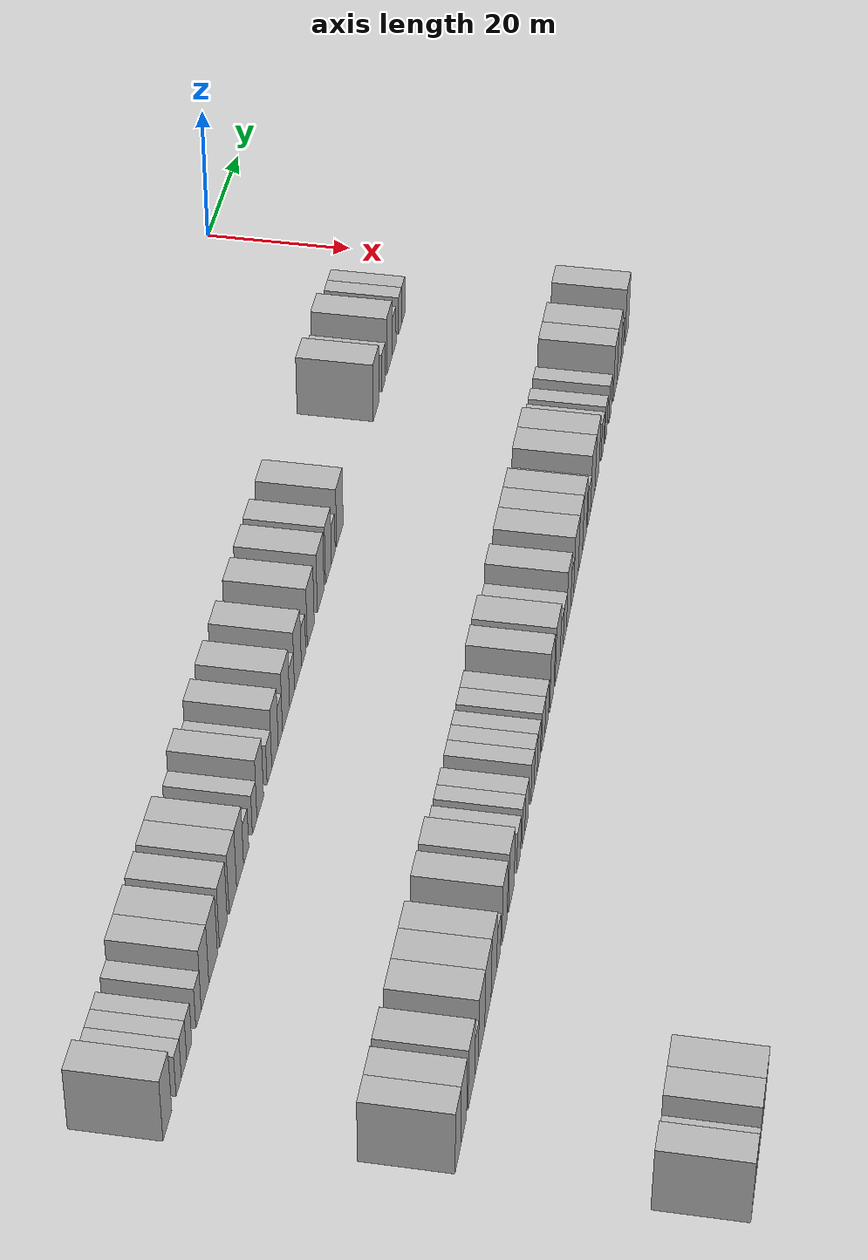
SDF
<sdf version="1.6">
 <world name="default">
  <model name="building_72">
   <static>1</static>
   <pose>25.0000 -158.2973 0 0.000000 0.000000 0.000000</pose>
   <link name="link">
    <pose>0 0 4.50 0 0 0</pose>
    <collision name="collision"><geometry><box><size>10.0000 4.0989 9.0000</size></box></geometry></collision>
    <visual name="visual">
     <cast_shadows>0</cast_shadows>
     <geometry><box><size>10.0000 4.0989 9.0000</size></box></geometry>
     <material>
      <script>
       <uri>model://HANNAS_wall/materials/scripts</uri>
       <uri>model://HANNAS_wall/materials/textures</uri>
       <name>vrc/HANNAS_wall</name>
      </script>
     </material>
    </visual>
   </link>
  </model>
  <model name="building_73">
   <static>1</static>
   <pose>25.0000 -152.9927 0 0.000000 0.000000 0.000000</pose>
   <link name="link">
    <pose>0 0 3.00 0 0 0</pose>
    <collision name="collision"><geometry><box><size>10.0000 2.5102 6.0000</size></box></geometry></collision>
    <visual name="visual">
     <cast_shadows>0</cast_shadows>
     <geometry><box><size>10.0000 2.5102 6.0000</size></box></geometry>
     <material>
      <script>
       <uri>model://HANNAS_wall/materials/scripts</uri>
       <uri>model://HANNAS_wall/materials/textures</uri>
       <name>vrc/HANNAS_wall</name>
      </script>
     </material>
    </visual>
   </link>
  </model>
  <model name="building_74">
   <static>1</static>
   <pose>25.0000 -150.4582 0 0.000000 0.000000 0.000000</pose>
   <link name="link">
    <pose>0 0 3.00 0 0 0</pose>
    <collision name="collision"><geometry><box><size>10.0000 2.5588 6.0000</size></box></geometry></collision>
    <visual name="visual">
     <cast_shadows>0</cast_shadows>
     <geometry><box><size>10.0000 2.5588 6.0000</size></box></geometry>
     <material>
      <script>
       <uri>model://HANNAS_wall/materials/scripts</uri>
       <uri>model://HANNAS_wall/materials/textures</uri>
       <name>vrc/HANNAS_wall</name>
      </script>
     </material>
    </visual>
   </link>
  </model>
  <model name="building_75">
   <static>1</static>
   <pose>25.0000 -147.9556 0 0.000000 0.000000 0.000000</pose>
   <link name="link">
    <pose>0 0 3.00 0 0 0</pose>
    <collision name="collision"><geometry><box><size>10.0000 2.4464 6.0000</size></box></geometry></collision>
    <visual name="visual">
     <cast_shadows>0</cast_shadows>
     <geometry><box><size>10.0000 2.4464 6.0000</size></box></geometry>
     <material>
      <script>
       <uri>model://HANNAS_wall/materials/scripts</uri>
       <uri>model://HANNAS_wall/materials/textures</uri>
       <name>vrc/HANNAS_wall</name>
      </script>
     </material>
    </visual>
   </link>
  </model>
  <model name="building_76">
   <static>1</static>
   <pose>25.0000 -143.4073 0 0.000000 0.000000 0.000000</pose>
   <link name="link">
    <pose>0 0 3.00 0 0 0</pose>
    <collision name="collision"><geometry><box><size>10.0000 2.6502 6.0000</size></box></geometry></collision>
    <visual name="visual">
     <cast_shadows>0</cast_shadows>
     <geometry><box><size>10.0000 2.6502 6.0000</size></box></geometry>
     <material>
      <script>
       <uri>model://HANNAS_wall/materials/scripts</uri>
       <uri>model://HANNAS_wall/materials/textures</uri>
       <name>vrc/HANNAS_wall</name>
      </script>
     </material>
    </visual>
   </link>
  </model>
  <model name="building_77">
   <static>1</static>
   <pose>25.0000 -140.1604 0 0.000000 0.000000 0.000000</pose>
   <link name="link">
    <pose>0 0 4.50 0 0 0</pose>
    <collision name="collision"><geometry><box><size>10.0000 3.8436 9.0000</size></box></geometry></collision>
    <visual name="visual">
     <cast_shadows>0</cast_shadows>
     <geometry><box><size>10.0000 3.8436 9.0000</size></box></geometry>
     <material>
      <script>
       <uri>model://HANNAS_wall/materials/scripts</uri>
       <uri>model://HANNAS_wall/materials/textures</uri>
       <name>vrc/HANNAS_wall</name>
      </script>
     </material>
    </visual>
   </link>
  </model>
  <model name="building_78">
   <static>1</static>
   <pose>25.0000 -136.0459 0 0.000000 0.000000 0.000000</pose>
   <link name="link">
    <pose>0 0 4.50 0 0 0</pose>
    <collision name="collision"><geometry><box><size>10.0000 4.3853 9.0000</size></box></geometry></collision>
    <visual name="visual">
     <cast_shadows>0</cast_shadows>
     <geometry><box><size>10.0000 4.3853 9.0000</size></box></geometry>
     <material>
      <script>
       <uri>model://HANNAS_wall/materials/scripts</uri>
       <uri>model://HANNAS_wall/materials/textures</uri>
       <name>vrc/HANNAS_wall</name>
      </script>
     </material>
    </visual>
   </link>
  </model>
  <model name="building_79">
   <static>1</static>
   <pose>25.0000 -130.8125 0 0.000000 0.000000 0.000000</pose>
   <link name="link">
    <pose>0 0 4.50 0 0 0</pose>
    <collision name="collision"><geometry><box><size>10.0000 4.0816 9.0000</size></box></geometry></collision>
    <visual name="visual">
     <cast_shadows>0</cast_shadows>
     <geometry><box><size>10.0000 4.0816 9.0000</size></box></geometry>
     <material>
      <script>
       <uri>model://HANNAS_wall/materials/scripts</uri>
       <uri>model://HANNAS_wall/materials/textures</uri>
       <name>vrc/HANNAS_wall</name>
      </script>
     </material>
    </visual>
   </link>
  </model>
  <model name="building_80">
   <static>1</static>
   <pose>25.0000 -125.8046 0 0.000000 0.000000 0.000000</pose>
   <link name="link">
    <pose>0 0 4.50 0 0 0</pose>
    <collision name="collision"><geometry><box><size>10.0000 3.9341 9.0000</size></box></geometry></collision>
    <visual name="visual">
     <cast_shadows>0</cast_shadows>
     <geometry><box><size>10.0000 3.9341 9.0000</size></box></geometry>
     <material>
      <script>
       <uri>model://HANNAS_wall/materials/scripts</uri>
       <uri>model://HANNAS_wall/materials/textures</uri>
       <name>vrc/HANNAS_wall</name>
      </script>
     </material>
    </visual>
   </link>
  </model>
  <model name="building_81">
   <static>1</static>
   <pose>25.0000 -121.9479 0 0.000000 0.000000 0.000000</pose>
   <link name="link">
    <pose>0 0 4.50 0 0 0</pose>
    <collision name="collision"><geometry><box><size>10.0000 3.7795 9.0000</size></box></geometry></collision>
    <visual name="visual">
     <cast_shadows>0</cast_shadows>
     <geometry><box><size>10.0000 3.7795 9.0000</size></box></geometry>
     <material>
      <script>
       <uri>model://HANNAS_wall/materials/scripts</uri>
       <uri>model://HANNAS_wall/materials/textures</uri>
       <name>vrc/HANNAS_wall</name>
      </script>
     </material>
    </visual>
   </link>
  </model>
  <model name="building_82">
   <static>1</static>
   <pose>25.0000 -118.6516 0 0.000000 0.000000 0.000000</pose>
   <link name="link">
    <pose>0 0 3.00 0 0 0</pose>
    <collision name="collision"><geometry><box><size>10.0000 2.8130 6.0000</size></box></geometry></collision>
    <visual name="visual">
     <cast_shadows>0</cast_shadows>
     <geometry><box><size>10.0000 2.8130 6.0000</size></box></geometry>
     <material>
      <script>
       <uri>model://HANNAS_wall/materials/scripts</uri>
       <uri>model://HANNAS_wall/materials/textures</uri>
       <name>vrc/HANNAS_wall</name>
      </script>
     </material>
    </visual>
   </link>
  </model>
  <model name="building_83">
   <static>1</static>
   <pose>25.0000 -113.9781 0 0.000000 0.000000 0.000000</pose>
   <link name="link">
    <pose>0 0 3.00 0 0 0</pose>
    <collision name="collision"><geometry><box><size>10.0000 2.5339 6.0000</size></box></geometry></collision>
    <visual name="visual">
     <cast_shadows>0</cast_shadows>
     <geometry><box><size>10.0000 2.5339 6.0000</size></box></geometry>
     <material>
      <script>
       <uri>model://HANNAS_wall/materials/scripts</uri>
       <uri>model://HANNAS_wall/materials/textures</uri>
       <name>vrc/HANNAS_wall</name>
      </script>
     </material>
    </visual>
   </link>
  </model>
  <model name="building_84">
   <static>1</static>
   <pose>25.0000 -110.8381 0 0.000000 0.000000 0.000000</pose>
   <link name="link">
    <pose>0 0 4.50 0 0 0</pose>
    <collision name="collision"><geometry><box><size>10.0000 3.7462 9.0000</size></box></geometry></collision>
    <visual name="visual">
     <cast_shadows>0</cast_shadows>
     <geometry><box><size>10.0000 3.7462 9.0000</size></box></geometry>
     <material>
      <script>
       <uri>model://HANNAS_wall/materials/scripts</uri>
       <uri>model://HANNAS_wall/materials/textures</uri>
       <name>vrc/HANNAS_wall</name>
      </script>
     </material>
    </visual>
   </link>
  </model>
  <model name="building_85">
   <static>1</static>
   <pose>25.0000 -105.6210 0 0.000000 0.000000 0.000000</pose>
   <link name="link">
    <pose>0 0 3.00 0 0 0</pose>
    <collision name="collision"><geometry><box><size>10.0000 2.6880 6.0000</size></box></geometry></collision>
    <visual name="visual">
     <cast_shadows>0</cast_shadows>
     <geometry><box><size>10.0000 2.6880 6.0000</size></box></geometry>
     <material>
      <script>
       <uri>model://HANNAS_wall/materials/scripts</uri>
       <uri>model://HANNAS_wall/materials/textures</uri>
       <name>vrc/HANNAS_wall</name>
      </script>
     </material>
    </visual>
   </link>
  </model>
  <model name="building_86">
   <static>1</static>
   <pose>25.0000 -102.3888 0 0.000000 0.000000 0.000000</pose>
   <link name="link">
    <pose>0 0 4.50 0 0 0</pose>
    <collision name="collision"><geometry><box><size>10.0000 3.7763 9.0000</size></box></geometry></collision>
    <visual name="visual">
     <cast_shadows>0</cast_shadows>
     <geometry><box><size>10.0000 3.7763 9.0000</size></box></geometry>
     <material>
      <script>
       <uri>model://HANNAS_wall/materials/scripts</uri>
       <uri>model://HANNAS_wall/materials/textures</uri>
       <name>vrc/HANNAS_wall</name>
      </script>
     </material>
    </visual>
   </link>
  </model>
  <model name="building_87">
   <static>1</static>
   <pose>25.0000 -99.2674 0 0.000000 0.000000 0.000000</pose>
   <link name="link">
    <pose>0 0 3.00 0 0 0</pose>
    <collision name="collision"><geometry><box><size>10.0000 2.4665 6.0000</size></box></geometry></collision>
    <visual name="visual">
     <cast_shadows>0</cast_shadows>
     <geometry><box><size>10.0000 2.4665 6.0000</size></box></geometry>
     <material>
      <script>
       <uri>model://HANNAS_wall/materials/scripts</uri>
       <uri>model://HANNAS_wall/materials/textures</uri>
       <name>vrc/HANNAS_wall</name>
      </script>
     </material>
    </visual>
   </link>
  </model>
  <model name="building_88">
   <static>1</static>
   <pose>25.0000 -95.8864 0 0.000000 0.000000 0.000000</pose>
   <link name="link">
    <pose>0 0 4.50 0 0 0</pose>
    <collision name="collision"><geometry><box><size>10.0000 4.2955 9.0000</size></box></geometry></collision>
    <visual name="visual">
     <cast_shadows>0</cast_shadows>
     <geometry><box><size>10.0000 4.2955 9.0000</size></box></geometry>
     <material>
      <script>
       <uri>model://HANNAS_wall/materials/scripts</uri>
       <uri>model://HANNAS_wall/materials/textures</uri>
       <name>vrc/HANNAS_wall</name>
      </script>
     </material>
    </visual>
   </link>
  </model>
  <model name="building_89">
   <static>1</static>
   <pose>25.0000 -92.2681 0 0.000000 0.000000 0.000000</pose>
   <link name="link">
    <pose>0 0 3.00 0 0 0</pose>
    <collision name="collision"><geometry><box><size>10.0000 2.9411 6.0000</size></box></geometry></collision>
    <visual name="visual">
     <cast_shadows>0</cast_shadows>
     <geometry><box><size>10.0000 2.9411 6.0000</size></box></geometry>
     <material>
      <script>
       <uri>model://HANNAS_wall/materials/scripts</uri>
       <uri>model://HANNAS_wall/materials/textures</uri>
       <name>vrc/HANNAS_wall</name>
      </script>
     </material>
    </visual>
   </link>
  </model>
  <model name="building_90">
   <static>1</static>
   <pose>25.0000 -88.6810 0 0.000000 0.000000 0.000000</pose>
   <link name="link">
    <pose>0 0 4.50 0 0 0</pose>
    <collision name="collision"><geometry><box><size>10.0000 4.2332 9.0000</size></box></geometry></collision>
    <visual name="visual">
     <cast_shadows>0</cast_shadows>
     <geometry><box><size>10.0000 4.2332 9.0000</size></box></geometry>
     <material>
      <script>
       <uri>model://HANNAS_wall/materials/scripts</uri>
       <uri>model://HANNAS_wall/materials/textures</uri>
       <name>vrc/HANNAS_wall</name>
      </script>
     </material>
    </visual>
   </link>
  </model>
  <model name="building_91">
   <static>1</static>
   <pose>25.0000 -85.2119 0 0.000000 0.000000 0.000000</pose>
   <link name="link">
    <pose>0 0 3.00 0 0 0</pose>
    <collision name="collision"><geometry><box><size>10.0000 2.7051 6.0000</size></box></geometry></collision>
    <visual name="visual">
     <cast_shadows>0</cast_shadows>
     <geometry><box><size>10.0000 2.7051 6.0000</size></box></geometry>
     <material>
      <script>
       <uri>model://HANNAS_wall/materials/scripts</uri>
       <uri>model://HANNAS_wall/materials/textures</uri>
       <name>vrc/HANNAS_wall</name>
      </script>
     </material>
    </visual>
   </link>
  </model>
  <model name="building_92">
   <static>1</static>
   <pose>25.0000 -80.6773 0 0.000000 0.000000 0.000000</pose>
   <link name="link">
    <pose>0 0 4.50 0 0 0</pose>
    <collision name="collision"><geometry><box><size>10.0000 4.3639 9.0000</size></box></geometry></collision>
    <visual name="visual">
     <cast_shadows>0</cast_shadows>
     <geometry><box><size>10.0000 4.3639 9.0000</size></box></geometry>
     <material>
      <script>
       <uri>model://HANNAS_wall/materials/scripts</uri>
       <uri>model://HANNAS_wall/materials/textures</uri>
       <name>vrc/HANNAS_wall</name>
      </script>
     </material>
    </visual>
   </link>
  </model>
  <model name="building_93">
   <static>1</static>
   <pose>25.0000 -74.3318 0 0.000000 0.000000 0.000000</pose>
   <link name="link">
    <pose>0 0 4.50 0 0 0</pose>
    <collision name="collision"><geometry><box><size>10.0000 4.3272 9.0000</size></box></geometry></collision>
    <visual name="visual">
     <cast_shadows>0</cast_shadows>
     <geometry><box><size>10.0000 4.3272 9.0000</size></box></geometry>
     <material>
      <script>
       <uri>model://HANNAS_wall/materials/scripts</uri>
       <uri>model://HANNAS_wall/materials/textures</uri>
       <name>vrc/HANNAS_wall</name>
      </script>
     </material>
    </visual>
   </link>
  </model>
  <model name="building_94">
   <static>1</static>
   <pose>25.0000 -69.2360 0 0.000000 0.000000 0.000000</pose>
   <link name="link">
    <pose>0 0 4.50 0 0 0</pose>
    <collision name="collision"><geometry><box><size>10.0000 3.8645 9.0000</size></box></geometry></collision>
    <visual name="visual">
     <cast_shadows>0</cast_shadows>
     <geometry><box><size>10.0000 3.8645 9.0000</size></box></geometry>
     <material>
      <script>
       <uri>model://HANNAS_wall/materials/scripts</uri>
       <uri>model://HANNAS_wall/materials/textures</uri>
       <name>vrc/HANNAS_wall</name>
      </script>
     </material>
    </visual>
   </link>
  </model>
  <model name="building_95">
   <static>1</static>
   <pose>25.0000 -66.0665 0 0.000000 0.000000 0.000000</pose>
   <link name="link">
    <pose>0 0 3.00 0 0 0</pose>
    <collision name="collision"><geometry><box><size>10.0000 2.4743 6.0000</size></box></geometry></collision>
    <visual name="visual">
     <cast_shadows>0</cast_shadows>
     <geometry><box><size>10.0000 2.4743 6.0000</size></box></geometry>
     <material>
      <script>
       <uri>model://HANNAS_wall/materials/scripts</uri>
       <uri>model://HANNAS_wall/materials/textures</uri>
       <name>vrc/HANNAS_wall</name>
      </script>
     </material>
    </visual>
   </link>
  </model>
  <model name="building_96">
   <static>1</static>
   <pose>25.0000 -61.6239 0 0.000000 0.000000 0.000000</pose>
   <link name="link">
    <pose>0 0 4.50 0 0 0</pose>
    <collision name="collision"><geometry><box><size>10.0000 4.4110 9.0000</size></box></geometry></collision>
    <visual name="visual">
     <cast_shadows>0</cast_shadows>
     <geometry><box><size>10.0000 4.4110 9.0000</size></box></geometry>
     <material>
      <script>
       <uri>model://HANNAS_wall/materials/scripts</uri>
       <uri>model://HANNAS_wall/materials/textures</uri>
       <name>vrc/HANNAS_wall</name>
      </script>
     </material>
    </visual>
   </link>
  </model>
  <model name="building_97">
   <static>1</static>
   <pose>25.0000 -35.8634 0 0.000000 0.000000 0.000000</pose>
   <link name="link">
    <pose>0 0 4.50 0 0 0</pose>
    <collision name="collision"><geometry><box><size>10.0000 4.3700 9.0000</size></box></geometry></collision>
    <visual name="visual">
     <cast_shadows>0</cast_shadows>
     <geometry><box><size>10.0000 4.3700 9.0000</size></box></geometry>
     <material>
      <script>
       <uri>model://HANNAS_wall/materials/scripts</uri>
       <uri>model://HANNAS_wall/materials/textures</uri>
       <name>vrc/HANNAS_wall</name>
      </script>
     </material>
    </visual>
   </link>
  </model>
  <model name="building_98">
   <static>1</static>
   <pose>25.0000 -30.2827 0 0.000000 0.000000 0.000000</pose>
   <link name="link">
    <pose>0 0 3.00 0 0 0</pose>
    <collision name="collision"><geometry><box><size>10.0000 2.7914 6.0000</size></box></geometry></collision>
    <visual name="visual">
     <cast_shadows>0</cast_shadows>
     <geometry><box><size>10.0000 2.7914 6.0000</size></box></geometry>
     <material>
      <script>
       <uri>model://HANNAS_wall/materials/scripts</uri>
       <uri>model://HANNAS_wall/materials/textures</uri>
       <name>vrc/HANNAS_wall</name>
      </script>
     </material>
    </visual>
   </link>
  </model>
  <model name="building_99">
   <static>1</static>
   <pose>25.0000 -25.7713 0 0.000000 0.000000 0.000000</pose>
   <link name="link">
    <pose>0 0 4.50 0 0 0</pose>
    <collision name="collision"><geometry><box><size>10.0000 4.2314 9.0000</size></box></geometry></collision>
    <visual name="visual">
     <cast_shadows>0</cast_shadows>
     <geometry><box><size>10.0000 4.2314 9.0000</size></box></geometry>
     <material>
      <script>
       <uri>model://HANNAS_wall/materials/scripts</uri>
       <uri>model://HANNAS_wall/materials/textures</uri>
       <name>vrc/HANNAS_wall</name>
      </script>
     </material>
    </visual>
   </link>
  </model>
  <model name="building_100">
   <static>1</static>
   <pose>25.0000 -22.2035 0 0.000000 0.000000 0.000000</pose>
   <link name="link">
    <pose>0 0 3.00 0 0 0</pose>
    <collision name="collision"><geometry><box><size>10.0000 2.9043 6.0000</size></box></geometry></collision>
    <visual name="visual">
     <cast_shadows>0</cast_shadows>
     <geometry><box><size>10.0000 2.9043 6.0000</size></box></geometry>
     <material>
      <script>
       <uri>model://HANNAS_wall/materials/scripts</uri>
       <uri>model://HANNAS_wall/materials/textures</uri>
       <name>vrc/HANNAS_wall</name>
      </script>
     </material>
    </visual>
   </link>
  </model>
  <model name="building_101">
   <static>1</static>
   <pose>25.0000 -17.5297 0 0.000000 0.000000 0.000000</pose>
   <link name="link">
    <pose>0 0 3.00 0 0 0</pose>
    <collision name="collision"><geometry><box><size>10.0000 2.4432 6.0000</size></box></geometry></collision>
    <visual name="visual">
     <cast_shadows>0</cast_shadows>
     <geometry><box><size>10.0000 2.4432 6.0000</size></box></geometry>
     <material>
      <script>
       <uri>model://HANNAS_wall/materials/scripts</uri>
       <uri>model://HANNAS_wall/materials/textures</uri>
       <name>vrc/HANNAS_wall</name>
      </script>
     </material>
    </visual>
   </link>
  </model>
  <model name="building_102">
   <static>1</static>
   <pose>25.0000 -15.0476 0 0.000000 0.000000 0.000000</pose>
   <link name="link">
    <pose>0 0 3.00 0 0 0</pose>
    <collision name="collision"><geometry><box><size>10.0000 2.5211 6.0000</size></box></geometry></collision>
    <visual name="visual">
     <cast_shadows>0</cast_shadows>
     <geometry><box><size>10.0000 2.5211 6.0000</size></box></geometry>
     <material>
      <script>
       <uri>model://HANNAS_wall/materials/scripts</uri>
       <uri>model://HANNAS_wall/materials/textures</uri>
       <name>vrc/HANNAS_wall</name>
      </script>
     </material>
    </visual>
   </link>
  </model>
  <model name="building_301">
   <static>1</static>
   <pose>55.0000 -157.8111 0 0.000000 0.000000 0.000000</pose>
   <link name="link">
    <pose>0 0 4.50 0 0 0</pose>
    <collision name="collision"><geometry><box><size>10.0000 3.6899 9.0000</size></box></geometry></collision>
    <visual name="visual">
     <cast_shadows>0</cast_shadows>
     <geometry><box><size>10.0000 3.6899 9.0000</size></box></geometry>
     <material>
      <script>
       <uri>model://HANNAS_wall/materials/scripts</uri>
       <uri>model://HANNAS_wall/materials/textures</uri>
       <name>vrc/HANNAS_wall</name>
      </script>
     </material>
    </visual>
   </link>
  </model>
  <model name="building_302">
   <static>1</static>
   <pose>55.0000 -154.0420 0 0.000000 0.000000 0.000000</pose>
   <link name="link">
    <pose>0 0 4.50 0 0 0</pose>
    <collision name="collision"><geometry><box><size>10.0000 3.8484 9.0000</size></box></geometry></collision>
    <visual name="visual">
     <cast_shadows>0</cast_shadows>
     <geometry><box><size>10.0000 3.8484 9.0000</size></box></geometry>
     <material>
      <script>
       <uri>model://HANNAS_wall/materials/scripts</uri>
       <uri>model://HANNAS_wall/materials/textures</uri>
       <name>vrc/HANNAS_wall</name>
      </script>
     </material>
    </visual>
   </link>
  </model>
  <model name="building_303">
   <static>1</static>
   <pose>55.0000 -148.8970 0 0.000000 0.000000 0.000000</pose>
   <link name="link">
    <pose>0 0 4.50 0 0 0</pose>
    <collision name="collision"><geometry><box><size>10.0000 4.4415 9.0000</size></box></geometry></collision>
    <visual name="visual">
     <cast_shadows>0</cast_shadows>
     <geometry><box><size>10.0000 4.4415 9.0000</size></box></geometry>
     <material>
      <script>
       <uri>model://HANNAS_wall/materials/scripts</uri>
       <uri>model://HANNAS_wall/materials/textures</uri>
       <name>vrc/HANNAS_wall</name>
      </script>
     </material>
    </visual>
   </link>
  </model>
  <model name="building_304">
   <static>1</static>
   <pose>55.0000 -145.3989 0 0.000000 0.000000 0.000000</pose>
   <link name="link">
    <pose>0 0 3.00 0 0 0</pose>
    <collision name="collision"><geometry><box><size>10.0000 2.5547 6.0000</size></box></geometry></collision>
    <visual name="visual">
     <cast_shadows>0</cast_shadows>
     <geometry><box><size>10.0000 2.5547 6.0000</size></box></geometry>
     <material>
      <script>
       <uri>model://HANNAS_wall/materials/scripts</uri>
       <uri>model://HANNAS_wall/materials/textures</uri>
       <name>vrc/HANNAS_wall</name>
      </script>
     </material>
    </visual>
   </link>
  </model>
  <model name="building_305">
   <static>1</static>
   <pose>55.0000 -141.9260 0 0.000000 0.000000 0.000000</pose>
   <link name="link">
    <pose>0 0 4.50 0 0 0</pose>
    <collision name="collision"><geometry><box><size>10.0000 4.3911 9.0000</size></box></geometry></collision>
    <visual name="visual">
     <cast_shadows>0</cast_shadows>
     <geometry><box><size>10.0000 4.3911 9.0000</size></box></geometry>
     <material>
      <script>
       <uri>model://HANNAS_wall/materials/scripts</uri>
       <uri>model://HANNAS_wall/materials/textures</uri>
       <name>vrc/HANNAS_wall</name>
      </script>
     </material>
    </visual>
   </link>
  </model>
  <model name="building_306">
   <static>1</static>
   <pose>55.0000 -137.5046 0 0.000000 0.000000 0.000000</pose>
   <link name="link">
    <pose>0 0 4.50 0 0 0</pose>
    <collision name="collision"><geometry><box><size>10.0000 4.4519 9.0000</size></box></geometry></collision>
    <visual name="visual">
     <cast_shadows>0</cast_shadows>
     <geometry><box><size>10.0000 4.4519 9.0000</size></box></geometry>
     <material>
      <script>
       <uri>model://HANNAS_wall/materials/scripts</uri>
       <uri>model://HANNAS_wall/materials/textures</uri>
       <name>vrc/HANNAS_wall</name>
      </script>
     </material>
    </visual>
   </link>
  </model>
  <model name="building_307">
   <static>1</static>
   <pose>55.0000 -133.2589 0 0.000000 0.000000 0.000000</pose>
   <link name="link">
    <pose>0 0 4.50 0 0 0</pose>
    <collision name="collision"><geometry><box><size>10.0000 4.0394 9.0000</size></box></geometry></collision>
    <visual name="visual">
     <cast_shadows>0</cast_shadows>
     <geometry><box><size>10.0000 4.0394 9.0000</size></box></geometry>
     <material>
      <script>
       <uri>model://HANNAS_wall/materials/scripts</uri>
       <uri>model://HANNAS_wall/materials/textures</uri>
       <name>vrc/HANNAS_wall</name>
      </script>
     </material>
    </visual>
   </link>
  </model>
  <model name="building_308">
   <static>1</static>
   <pose>55.0000 -129.8589 0 0.000000 0.000000 0.000000</pose>
   <link name="link">
    <pose>0 0 3.00 0 0 0</pose>
    <collision name="collision"><geometry><box><size>10.0000 2.7607 6.0000</size></box></geometry></collision>
    <visual name="visual">
     <cast_shadows>0</cast_shadows>
     <geometry><box><size>10.0000 2.7607 6.0000</size></box></geometry>
     <material>
      <script>
       <uri>model://HANNAS_wall/materials/scripts</uri>
       <uri>model://HANNAS_wall/materials/textures</uri>
       <name>vrc/HANNAS_wall</name>
      </script>
     </material>
    </visual>
   </link>
  </model>
  <model name="building_309">
   <static>1</static>
   <pose>55.0000 -125.5322 0 0.000000 0.000000 0.000000</pose>
   <link name="link">
    <pose>0 0 4.50 0 0 0</pose>
    <collision name="collision"><geometry><box><size>10.0000 3.8926 9.0000</size></box></geometry></collision>
    <visual name="visual">
     <cast_shadows>0</cast_shadows>
     <geometry><box><size>10.0000 3.8926 9.0000</size></box></geometry>
     <material>
      <script>
       <uri>model://HANNAS_wall/materials/scripts</uri>
       <uri>model://HANNAS_wall/materials/textures</uri>
       <name>vrc/HANNAS_wall</name>
      </script>
     </material>
    </visual>
   </link>
  </model>
  <model name="building_310">
   <static>1</static>
   <pose>55.0000 -120.4389 0 0.000000 0.000000 0.000000</pose>
   <link name="link">
    <pose>0 0 4.50 0 0 0</pose>
    <collision name="collision"><geometry><box><size>10.0000 4.2941 9.0000</size></box></geometry></collision>
    <visual name="visual">
     <cast_shadows>0</cast_shadows>
     <geometry><box><size>10.0000 4.2941 9.0000</size></box></geometry>
     <material>
      <script>
       <uri>model://HANNAS_wall/materials/scripts</uri>
       <uri>model://HANNAS_wall/materials/textures</uri>
       <name>vrc/HANNAS_wall</name>
      </script>
     </material>
    </visual>
   </link>
  </model>
  <model name="building_311">
   <static>1</static>
   <pose>55.0000 -114.8200 0 0.000000 0.000000 0.000000</pose>
   <link name="link">
    <pose>0 0 3.00 0 0 0</pose>
    <collision name="collision"><geometry><box><size>10.0000 2.9438 6.0000</size></box></geometry></collision>
    <visual name="visual">
     <cast_shadows>0</cast_shadows>
     <geometry><box><size>10.0000 2.9438 6.0000</size></box></geometry>
     <material>
      <script>
       <uri>model://HANNAS_wall/materials/scripts</uri>
       <uri>model://HANNAS_wall/materials/textures</uri>
       <name>vrc/HANNAS_wall</name>
      </script>
     </material>
    </visual>
   </link>
  </model>
  <model name="building_312">
   <static>1</static>
   <pose>55.0000 -111.1478 0 0.000000 0.000000 0.000000</pose>
   <link name="link">
    <pose>0 0 3.00 0 0 0</pose>
    <collision name="collision"><geometry><box><size>10.0000 2.4006 6.0000</size></box></geometry></collision>
    <visual name="visual">
     <cast_shadows>0</cast_shadows>
     <geometry><box><size>10.0000 2.4006 6.0000</size></box></geometry>
     <material>
      <script>
       <uri>model://HANNAS_wall/materials/scripts</uri>
       <uri>model://HANNAS_wall/materials/textures</uri>
       <name>vrc/HANNAS_wall</name>
      </script>
     </material>
    </visual>
   </link>
  </model>
  <model name="building_313">
   <static>1</static>
   <pose>55.0000 -108.5368 0 0.000000 0.000000 0.000000</pose>
   <link name="link">
    <pose>0 0 3.00 0 0 0</pose>
    <collision name="collision"><geometry><box><size>10.0000 2.8214 6.0000</size></box></geometry></collision>
    <visual name="visual">
     <cast_shadows>0</cast_shadows>
     <geometry><box><size>10.0000 2.8214 6.0000</size></box></geometry>
     <material>
      <script>
       <uri>model://HANNAS_wall/materials/scripts</uri>
       <uri>model://HANNAS_wall/materials/textures</uri>
       <name>vrc/HANNAS_wall</name>
      </script>
     </material>
    </visual>
   </link>
  </model>
  <model name="building_314">
   <static>1</static>
   <pose>55.0000 -103.8178 0 0.000000 0.000000 0.000000</pose>
   <link name="link">
    <pose>0 0 3.00 0 0 0</pose>
    <collision name="collision"><geometry><box><size>10.0000 2.6166 6.0000</size></box></geometry></collision>
    <visual name="visual">
     <cast_shadows>0</cast_shadows>
     <geometry><box><size>10.0000 2.6166 6.0000</size></box></geometry>
     <material>
      <script>
       <uri>model://HANNAS_wall/materials/scripts</uri>
       <uri>model://HANNAS_wall/materials/textures</uri>
       <name>vrc/HANNAS_wall</name>
      </script>
     </material>
    </visual>
   </link>
  </model>
  <model name="building_315">
   <static>1</static>
   <pose>55.0000 -101.2154 0 0.000000 0.000000 0.000000</pose>
   <link name="link">
    <pose>0 0 3.00 0 0 0</pose>
    <collision name="collision"><geometry><box><size>10.0000 2.5883 6.0000</size></box></geometry></collision>
    <visual name="visual">
     <cast_shadows>0</cast_shadows>
     <geometry><box><size>10.0000 2.5883 6.0000</size></box></geometry>
     <material>
      <script>
       <uri>model://HANNAS_wall/materials/scripts</uri>
       <uri>model://HANNAS_wall/materials/textures</uri>
       <name>vrc/HANNAS_wall</name>
      </script>
     </material>
    </visual>
   </link>
  </model>
  <model name="building_316">
   <static>1</static>
   <pose>55.0000 -98.7055 0 0.000000 0.000000 0.000000</pose>
   <link name="link">
    <pose>0 0 3.00 0 0 0</pose>
    <collision name="collision"><geometry><box><size>10.0000 2.4315 6.0000</size></box></geometry></collision>
    <visual name="visual">
     <cast_shadows>0</cast_shadows>
     <geometry><box><size>10.0000 2.4315 6.0000</size></box></geometry>
     <material>
      <script>
       <uri>model://HANNAS_wall/materials/scripts</uri>
       <uri>model://HANNAS_wall/materials/textures</uri>
       <name>vrc/HANNAS_wall</name>
      </script>
     </material>
    </visual>
   </link>
  </model>
  <model name="building_317">
   <static>1</static>
   <pose>55.0000 -94.9906 0 0.000000 0.000000 0.000000</pose>
   <link name="link">
    <pose>0 0 3.00 0 0 0</pose>
    <collision name="collision"><geometry><box><size>10.0000 2.9983 6.0000</size></box></geometry></collision>
    <visual name="visual">
     <cast_shadows>0</cast_shadows>
     <geometry><box><size>10.0000 2.9983 6.0000</size></box></geometry>
     <material>
      <script>
       <uri>model://HANNAS_wall/materials/scripts</uri>
       <uri>model://HANNAS_wall/materials/textures</uri>
       <name>vrc/HANNAS_wall</name>
      </script>
     </material>
    </visual>
   </link>
  </model>
  <model name="building_318">
   <static>1</static>
   <pose>55.0000 -92.0301 0 0.000000 0.000000 0.000000</pose>
   <link name="link">
    <pose>0 0 3.00 0 0 0</pose>
    <collision name="collision"><geometry><box><size>10.0000 2.9227 6.0000</size></box></geometry></collision>
    <visual name="visual">
     <cast_shadows>0</cast_shadows>
     <geometry><box><size>10.0000 2.9227 6.0000</size></box></geometry>
     <material>
      <script>
       <uri>model://HANNAS_wall/materials/scripts</uri>
       <uri>model://HANNAS_wall/materials/textures</uri>
       <name>vrc/HANNAS_wall</name>
      </script>
     </material>
    </visual>
   </link>
  </model>
  <model name="building_319">
   <static>1</static>
   <pose>55.0000 -87.7403 0 0.000000 0.000000 0.000000</pose>
   <link name="link">
    <pose>0 0 4.50 0 0 0</pose>
    <collision name="collision"><geometry><box><size>10.0000 3.6570 9.0000</size></box></geometry></collision>
    <visual name="visual">
     <cast_shadows>0</cast_shadows>
     <geometry><box><size>10.0000 3.6570 9.0000</size></box></geometry>
     <material>
      <script>
       <uri>model://HANNAS_wall/materials/scripts</uri>
       <uri>model://HANNAS_wall/materials/textures</uri>
       <name>vrc/HANNAS_wall</name>
      </script>
     </material>
    </visual>
   </link>
  </model>
  <model name="building_320">
   <static>1</static>
   <pose>55.0000 -82.6847 0 0.000000 0.000000 0.000000</pose>
   <link name="link">
    <pose>0 0 4.50 0 0 0</pose>
    <collision name="collision"><geometry><box><size>10.0000 4.4542 9.0000</size></box></geometry></collision>
    <visual name="visual">
     <cast_shadows>0</cast_shadows>
     <geometry><box><size>10.0000 4.4542 9.0000</size></box></geometry>
     <material>
      <script>
       <uri>model://HANNAS_wall/materials/scripts</uri>
       <uri>model://HANNAS_wall/materials/textures</uri>
       <name>vrc/HANNAS_wall</name>
      </script>
     </material>
    </visual>
   </link>
  </model>
  <model name="building_321">
   <static>1</static>
   <pose>55.0000 -79.0736 0 0.000000 0.000000 0.000000</pose>
   <link name="link">
    <pose>0 0 3.00 0 0 0</pose>
    <collision name="collision"><geometry><box><size>10.0000 2.7680 6.0000</size></box></geometry></collision>
    <visual name="visual">
     <cast_shadows>0</cast_shadows>
     <geometry><box><size>10.0000 2.7680 6.0000</size></box></geometry>
     <material>
      <script>
       <uri>model://HANNAS_wall/materials/scripts</uri>
       <uri>model://HANNAS_wall/materials/textures</uri>
       <name>vrc/HANNAS_wall</name>
      </script>
     </material>
    </visual>
   </link>
  </model>
  <model name="building_322">
   <static>1</static>
   <pose>55.0000 -76.2175 0 0.000000 0.000000 0.000000</pose>
   <link name="link">
    <pose>0 0 3.00 0 0 0</pose>
    <collision name="collision"><geometry><box><size>10.0000 2.9441 6.0000</size></box></geometry></collision>
    <visual name="visual">
     <cast_shadows>0</cast_shadows>
     <geometry><box><size>10.0000 2.9441 6.0000</size></box></geometry>
     <material>
      <script>
       <uri>model://HANNAS_wall/materials/scripts</uri>
       <uri>model://HANNAS_wall/materials/textures</uri>
       <name>vrc/HANNAS_wall</name>
      </script>
     </material>
    </visual>
   </link>
  </model>
  <model name="building_323">
   <static>1</static>
   <pose>55.0000 -72.8383 0 0.000000 0.000000 0.000000</pose>
   <link name="link">
    <pose>0 0 4.50 0 0 0</pose>
    <collision name="collision"><geometry><box><size>10.0000 3.8143 9.0000</size></box></geometry></collision>
    <visual name="visual">
     <cast_shadows>0</cast_shadows>
     <geometry><box><size>10.0000 3.8143 9.0000</size></box></geometry>
     <material>
      <script>
       <uri>model://HANNAS_wall/materials/scripts</uri>
       <uri>model://HANNAS_wall/materials/textures</uri>
       <name>vrc/HANNAS_wall</name>
      </script>
     </material>
    </visual>
   </link>
  </model>
  <model name="building_324">
   <static>1</static>
   <pose>55.0000 -69.5456 0 0.000000 0.000000 0.000000</pose>
   <link name="link">
    <pose>0 0 3.00 0 0 0</pose>
    <collision name="collision"><geometry><box><size>10.0000 2.7711 6.0000</size></box></geometry></collision>
    <visual name="visual">
     <cast_shadows>0</cast_shadows>
     <geometry><box><size>10.0000 2.7711 6.0000</size></box></geometry>
     <material>
      <script>
       <uri>model://HANNAS_wall/materials/scripts</uri>
       <uri>model://HANNAS_wall/materials/textures</uri>
       <name>vrc/HANNAS_wall</name>
      </script>
     </material>
    </visual>
   </link>
  </model>
  <model name="building_325">
   <static>1</static>
   <pose>55.0000 -65.9990 0 0.000000 0.000000 0.000000</pose>
   <link name="link">
    <pose>0 0 4.50 0 0 0</pose>
    <collision name="collision"><geometry><box><size>10.0000 4.3219 9.0000</size></box></geometry></collision>
    <visual name="visual">
     <cast_shadows>0</cast_shadows>
     <geometry><box><size>10.0000 4.3219 9.0000</size></box></geometry>
     <material>
      <script>
       <uri>model://HANNAS_wall/materials/scripts</uri>
       <uri>model://HANNAS_wall/materials/textures</uri>
       <name>vrc/HANNAS_wall</name>
      </script>
     </material>
    </visual>
   </link>
  </model>
  <model name="building_326">
   <static>1</static>
   <pose>55.0000 -61.8649 0 0.000000 0.000000 0.000000</pose>
   <link name="link">
    <pose>0 0 4.50 0 0 0</pose>
    <collision name="collision"><geometry><box><size>10.0000 3.9463 9.0000</size></box></geometry></collision>
    <visual name="visual">
     <cast_shadows>0</cast_shadows>
     <geometry><box><size>10.0000 3.9463 9.0000</size></box></geometry>
     <material>
      <script>
       <uri>model://HANNAS_wall/materials/scripts</uri>
       <uri>model://HANNAS_wall/materials/textures</uri>
       <name>vrc/HANNAS_wall</name>
      </script>
     </material>
    </visual>
   </link>
  </model>
  <model name="building_327">
   <static>1</static>
   <pose>55.0000 -58.0006 0 0.000000 0.000000 0.000000</pose>
   <link name="link">
    <pose>0 0 4.50 0 0 0</pose>
    <collision name="collision"><geometry><box><size>10.0000 3.7823 9.0000</size></box></geometry></collision>
    <visual name="visual">
     <cast_shadows>0</cast_shadows>
     <geometry><box><size>10.0000 3.7823 9.0000</size></box></geometry>
     <material>
      <script>
       <uri>model://HANNAS_wall/materials/scripts</uri>
       <uri>model://HANNAS_wall/materials/textures</uri>
       <name>vrc/HANNAS_wall</name>
      </script>
     </material>
    </visual>
   </link>
  </model>
  <model name="building_328">
   <static>1</static>
   <pose>55.0000 -53.6098 0 0.000000 0.000000 0.000000</pose>
   <link name="link">
    <pose>0 0 3.00 0 0 0</pose>
    <collision name="collision"><geometry><box><size>10.0000 2.9992 6.0000</size></box></geometry></collision>
    <visual name="visual">
     <cast_shadows>0</cast_shadows>
     <geometry><box><size>10.0000 2.9992 6.0000</size></box></geometry>
     <material>
      <script>
       <uri>model://HANNAS_wall/materials/scripts</uri>
       <uri>model://HANNAS_wall/materials/textures</uri>
       <name>vrc/HANNAS_wall</name>
      </script>
     </material>
    </visual>
   </link>
  </model>
  <model name="building_329">
   <static>1</static>
   <pose>55.0000 -49.9155 0 0.000000 0.000000 0.000000</pose>
   <link name="link">
    <pose>0 0 4.50 0 0 0</pose>
    <collision name="collision"><geometry><box><size>10.0000 4.3895 9.0000</size></box></geometry></collision>
    <visual name="visual">
     <cast_shadows>0</cast_shadows>
     <geometry><box><size>10.0000 4.3895 9.0000</size></box></geometry>
     <material>
      <script>
       <uri>model://HANNAS_wall/materials/scripts</uri>
       <uri>model://HANNAS_wall/materials/textures</uri>
       <name>vrc/HANNAS_wall</name>
      </script>
     </material>
    </visual>
   </link>
  </model>
  <model name="building_330">
   <static>1</static>
   <pose>55.0000 -45.6636 0 0.000000 0.000000 0.000000</pose>
   <link name="link">
    <pose>0 0 4.50 0 0 0</pose>
    <collision name="collision"><geometry><box><size>10.0000 4.1143 9.0000</size></box></geometry></collision>
    <visual name="visual">
     <cast_shadows>0</cast_shadows>
     <geometry><box><size>10.0000 4.1143 9.0000</size></box></geometry>
     <material>
      <script>
       <uri>model://HANNAS_wall/materials/scripts</uri>
       <uri>model://HANNAS_wall/materials/textures</uri>
       <name>vrc/HANNAS_wall</name>
      </script>
     </material>
    </visual>
   </link>
  </model>
  <model name="building_331">
   <static>1</static>
   <pose>55.0000 -40.2605 0 0.000000 0.000000 0.000000</pose>
   <link name="link">
    <pose>0 0 3.00 0 0 0</pose>
    <collision name="collision"><geometry><box><size>10.0000 2.6919 6.0000</size></box></geometry></collision>
    <visual name="visual">
     <cast_shadows>0</cast_shadows>
     <geometry><box><size>10.0000 2.6919 6.0000</size></box></geometry>
     <material>
      <script>
       <uri>model://HANNAS_wall/materials/scripts</uri>
       <uri>model://HANNAS_wall/materials/textures</uri>
       <name>vrc/HANNAS_wall</name>
      </script>
     </material>
    </visual>
   </link>
  </model>
  <model name="building_332">
   <static>1</static>
   <pose>55.0000 -36.6968 0 0.000000 0.000000 0.000000</pose>
   <link name="link">
    <pose>0 0 3.00 0 0 0</pose>
    <collision name="collision"><geometry><box><size>10.0000 2.4354 6.0000</size></box></geometry></collision>
    <visual name="visual">
     <cast_shadows>0</cast_shadows>
     <geometry><box><size>10.0000 2.4354 6.0000</size></box></geometry>
     <material>
      <script>
       <uri>model://HANNAS_wall/materials/scripts</uri>
       <uri>model://HANNAS_wall/materials/textures</uri>
       <name>vrc/HANNAS_wall</name>
      </script>
     </material>
    </visual>
   </link>
  </model>
  <model name="building_333">
   <static>1</static>
   <pose>55.0000 -32.1799 0 0.000000 0.000000 0.000000</pose>
   <link name="link">
    <pose>0 0 3.00 0 0 0</pose>
    <collision name="collision"><geometry><box><size>10.0000 2.5985 6.0000</size></box></geometry></collision>
    <visual name="visual">
     <cast_shadows>0</cast_shadows>
     <geometry><box><size>10.0000 2.5985 6.0000</size></box></geometry>
     <material>
      <script>
       <uri>model://HANNAS_wall/materials/scripts</uri>
       <uri>model://HANNAS_wall/materials/textures</uri>
       <name>vrc/HANNAS_wall</name>
      </script>
     </material>
    </visual>
   </link>
  </model>
  <model name="building_334">
   <static>1</static>
   <pose>55.0000 -26.9606 0 0.000000 0.000000 0.000000</pose>
   <link name="link">
    <pose>0 0 4.50 0 0 0</pose>
    <collision name="collision"><geometry><box><size>10.0000 3.8401 9.0000</size></box></geometry></collision>
    <visual name="visual">
     <cast_shadows>0</cast_shadows>
     <geometry><box><size>10.0000 3.8401 9.0000</size></box></geometry>
     <material>
      <script>
       <uri>model://HANNAS_wall/materials/scripts</uri>
       <uri>model://HANNAS_wall/materials/textures</uri>
       <name>vrc/HANNAS_wall</name>
      </script>
     </material>
    </visual>
   </link>
  </model>
  <model name="building_335">
   <static>1</static>
   <pose>55.0000 -22.8633 0 0.000000 0.000000 0.000000</pose>
   <link name="link">
    <pose>0 0 4.50 0 0 0</pose>
    <collision name="collision"><geometry><box><size>10.0000 4.3546 9.0000</size></box></geometry></collision>
    <visual name="visual">
     <cast_shadows>0</cast_shadows>
     <geometry><box><size>10.0000 4.3546 9.0000</size></box></geometry>
     <material>
      <script>
       <uri>model://HANNAS_wall/materials/scripts</uri>
       <uri>model://HANNAS_wall/materials/textures</uri>
       <name>vrc/HANNAS_wall</name>
      </script>
     </material>
    </visual>
   </link>
  </model>
  <model name="building_336">
   <static>1</static>
   <pose>55.0000 -19.4437 0 0.000000 0.000000 0.000000</pose>
   <link name="link">
    <pose>0 0 3.00 0 0 0</pose>
    <collision name="collision"><geometry><box><size>10.0000 2.4845 6.0000</size></box></geometry></collision>
    <visual name="visual">
     <cast_shadows>0</cast_shadows>
     <geometry><box><size>10.0000 2.4845 6.0000</size></box></geometry>
     <material>
      <script>
       <uri>model://HANNAS_wall/materials/scripts</uri>
       <uri>model://HANNAS_wall/materials/textures</uri>
       <name>vrc/HANNAS_wall</name>
      </script>
     </material>
    </visual>
   </link>
  </model>
  <model name="building_337">
   <static>1</static>
   <pose>55.0000 -14.1314 0 0.000000 0.000000 0.000000</pose>
   <link name="link">
    <pose>0 0 4.50 0 0 0</pose>
    <collision name="collision"><geometry><box><size>10.0000 4.1401 9.0000</size></box></geometry></collision>
    <visual name="visual">
     <cast_shadows>0</cast_shadows>
     <geometry><box><size>10.0000 4.1401 9.0000</size></box></geometry>
     <material>
      <script>
       <uri>model://HANNAS_wall/materials/scripts</uri>
       <uri>model://HANNAS_wall/materials/textures</uri>
       <name>vrc/HANNAS_wall</name>
      </script>
     </material>
    </visual>
   </link>
  </model>
  <model name="building_524">
   <static>1</static>
   <pose>85.0000 -159.0469 0 0.000000 0.000000 0.000000</pose>
   <link name="link">
    <pose>0 0 4.50 0 0 0</pose>
    <collision name="collision"><geometry><box><size>10.0000 3.8502 9.0000</size></box></geometry></collision>
    <visual name="visual">
     <cast_shadows>0</cast_shadows>
     <geometry><box><size>10.0000 3.8502 9.0000</size></box></geometry>
     <material>
      <script>
       <uri>model://HANNAS_wall/materials/scripts</uri>
       <uri>model://HANNAS_wall/materials/textures</uri>
       <name>vrc/HANNAS_wall</name>
      </script>
     </material>
    </visual>
   </link>
  </model>
  <model name="building_525">
   <static>1</static>
   <pose>85.0000 -154.9156 0 0.000000 0.000000 0.000000</pose>
   <link name="link">
    <pose>0 0 3.00 0 0 0</pose>
    <collision name="collision"><geometry><box><size>10.0000 2.4123 6.0000</size></box></geometry></collision>
    <visual name="visual">
     <cast_shadows>0</cast_shadows>
     <geometry><box><size>10.0000 2.4123 6.0000</size></box></geometry>
     <material>
      <script>
       <uri>model://HANNAS_wall/materials/scripts</uri>
       <uri>model://HANNAS_wall/materials/textures</uri>
       <name>vrc/HANNAS_wall</name>
      </script>
     </material>
    </visual>
   </link>
  </model>
  <model name="building_526">
   <static>1</static>
   <pose>85.0000 -151.7448 0 0.000000 0.000000 0.000000</pose>
   <link name="link">
    <pose>0 0 4.50 0 0 0</pose>
    <collision name="collision"><geometry><box><size>10.0000 3.9294 9.0000</size></box></geometry></collision>
    <visual name="visual">
     <cast_shadows>0</cast_shadows>
     <geometry><box><size>10.0000 3.9294 9.0000</size></box></geometry>
     <material>
      <script>
       <uri>model://HANNAS_wall/materials/scripts</uri>
       <uri>model://HANNAS_wall/materials/textures</uri>
       <name>vrc/HANNAS_wall</name>
      </script>
     </material>
    </visual>
   </link>
  </model>
  <model name="building_527">
   <static>1</static>
   <pose>85.0000 -147.6178 0 0.000000 0.000000 0.000000</pose>
   <link name="link">
    <pose>0 0 4.50 0 0 0</pose>
    <collision name="collision"><geometry><box><size>10.0000 4.3246 9.0000</size></box></geometry></collision>
    <visual name="visual">
     <cast_shadows>0</cast_shadows>
     <geometry><box><size>10.0000 4.3246 9.0000</size></box></geometry>
     <material>
      <script>
       <uri>model://HANNAS_wall/materials/scripts</uri>
       <uri>model://HANNAS_wall/materials/textures</uri>
       <name>vrc/HANNAS_wall</name>
      </script>
     </material>
    </visual>
   </link>
  </model>
 </world>
</sdf>
